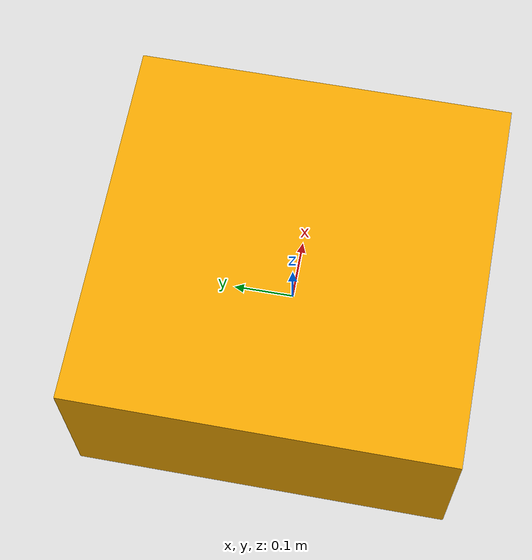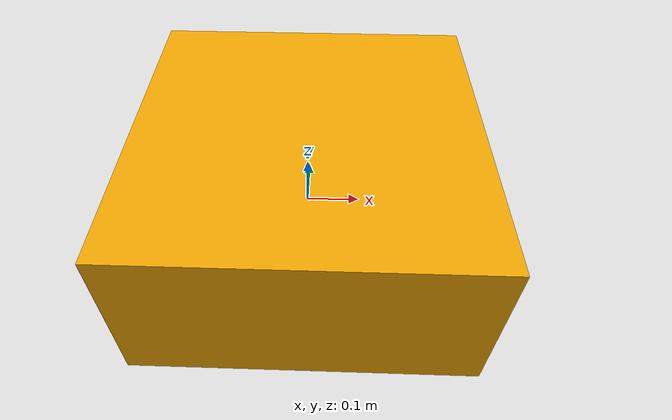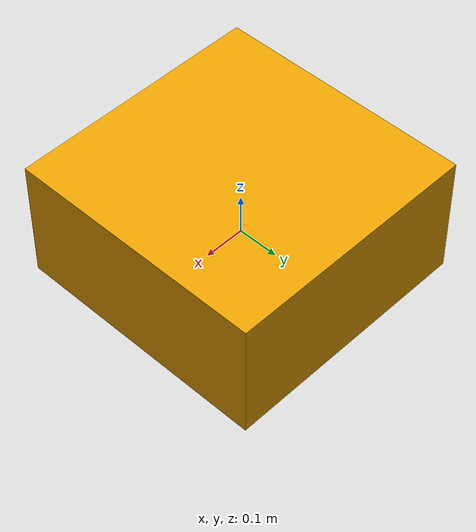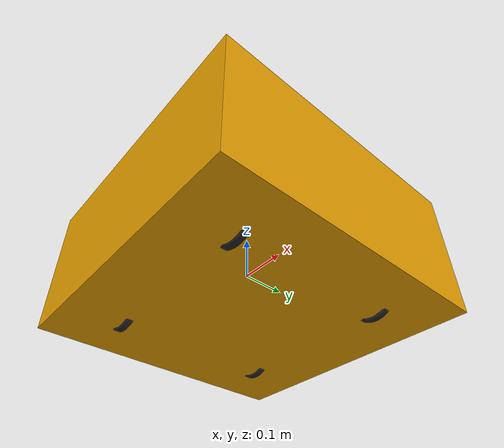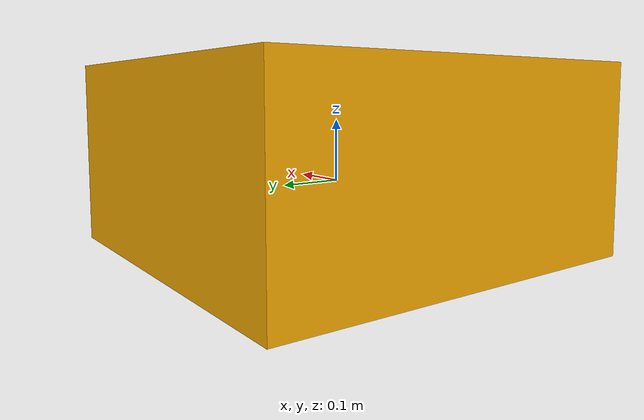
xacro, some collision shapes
<?xml version="1.0"?>
<robot xmlns:xacro="http://www.ros.org/wiki/xacro" name="sentry">

    <xacro:arg name="load_chassis" default="true"/>
    <xacro:arg name="load_gimbal" default="false"/>
    <xacro:arg name="load_shooter" default="false"/>
    <xacro:arg name="camera_link" default="camera_link"/>
    <xacro:arg name="back_camera_link" default="back_camera_link"/>
    <xacro:arg name="camera_optical_frame" default="camera_optical_frame"/>
    <xacro:arg name="back_camera_optical_frame" default="back_camera_optical_frame"/>
    <xacro:arg name="use_simulation" default="false"/>
    <xacro:arg name="roller_type" default="realistic"/>

    <xacro:if value="$(arg load_chassis)">
        <xacro:include filename="$(find rm2_description)/urdf/sentry/chassis.urdf.xacro"/>
        <xacro:chassis roller_type="$(arg roller_type)"/>

        <xacro:if value="$(arg load_gimbal)">
            <xacro:include filename="$(find rm2_description)/urdf/sentry/gimbal.urdf.xacro"/>
            <xacro:include filename="$(find rm2_description)/urdf/sentry/gimbal.transmission.urdf.xacro"/>

            <xacro:include filename="$(find rm2_description)/urdf/common/imu.urdf.xacro"/>
            <xacro:include filename="$(find rm2_description)/urdf/common/camera.urdf.xacro"/>
            <xacro:include filename="$(find rm2_description)/urdf/common/livox_mid360.urdf.xacro"/>
            <xacro:include filename="$(find rm2_description)/urdf/common/lidar2d.urdf.xacro"/>
            <xacro:camera_sensor xyz="0.019622 0 0.0681" rpy="0 0 0" frame_id="$(arg camera_link)"
                                 camera_type="hk_camera"
                                 parent="pitch"
                                 camera_sim="$(arg use_simulation)"/>
            <xacro:camera_optical_frame xyz="0.019622 0 0.0681"
                                        rpy="-1.53606 0 -1.5697212"
                                        frame_id="$(arg camera_optical_frame)"
                                        parent="pitch"
                                        camera_sim="false"/>
            <xacro:camera_sensor xyz="-0.057452 0.067 0.035482" rpy="0 0 0" frame_id="$(arg back_camera_link)"
                                 camera_type="galaxy_camera" parent="yaw"
                                 camera_sim="$(arg use_simulation)"/>
            <!--                                        rpy="-1.6307963 0 1.5707963"-->
            <xacro:camera_optical_frame xyz="-0.057452 0.067 0.035482"
                                        rpy="${pi/2} 0 -${pi/2}"
                                        frame_id="$(arg back_camera_optical_frame)"
                                        parent="yaw"
                                        camera_sim="false"/>
            <xacro:IMU connected_to="pitch" imu_name="gimbal_imu"
                       xyz="-0.01181 0 0.0426"
                       rpy="0.023 -0.01 -${pi/2}"/>
            <!--            0.05 0 -${pi/2}"   0.05 0.01 -1.65-->
            <xacro:livox_mid360 connected_to="yaw" simulation="$(arg use_simulation)" lidar_name="livox_frame"
                                xyz="-0.046952 0.12769 0.086387" rpy="0.789 0.009 -3.1415926"/>
            <xacro:lidar2d connected_to="yaw" simulation="$(arg use_simulation)" lidar_name="laser"
                           xyz="-0.047347 -0.094 0.03285" rpy="0.0 0.0 0.0"/>
            <xacro:if value="$(arg load_shooter)">
                <xacro:include filename="$(find rm2_description)/urdf/sentry/shooter.urdf.xacro"/>
                <xacro:include filename="$(find rm2_description)/urdf/sentry/shooter.transmission.urdf.xacro"/>
            </xacro:if>
        </xacro:if>
    </xacro:if>

    <ros2_control name="RmEcatHardwareInterface" type="system">
        <hardware>
            <plugin>rm2_ecat_ros/RmEcatHardwareInterface</plugin>
        </hardware>

        <joint name="left_front_wheel_joint">
            <command_interface name="effort"/>
            <state_interface name="position"/>
            <state_interface name="velocity"/>
            <state_interface name="effort"/>
        </joint>

        <joint name="right_front_wheel_joint">
            <command_interface name="effort"/>
            <state_interface name="position"/>
            <state_interface name="velocity"/>
            <state_interface name="effort"/>
        </joint>

        <joint name="left_back_wheel_joint">
            <command_interface name="effort"/>
            <state_interface name="position"/>
            <state_interface name="velocity"/>
            <state_interface name="effort"/>
        </joint>

        <joint name="right_back_wheel_joint">
            <command_interface name="effort"/>
            <state_interface name="position"/>
            <state_interface name="velocity"/>
            <state_interface name="effort"/>
        </joint>

        <joint name="left_front_pivot_joint">
            <command_interface name="effort"/>
            <state_interface name="position"/>
            <state_interface name="velocity"/>
            <state_interface name="effort"/>
        </joint>

        <joint name="right_front_pivot_joint">
            <command_interface name="effort"/>
            <state_interface name="position"/>
            <state_interface name="velocity"/>
            <state_interface name="effort"/>
        </joint>

        <joint name="left_back_pivot_joint">
            <command_interface name="effort"/>
            <state_interface name="position"/>
            <state_interface name="velocity"/>
            <state_interface name="effort"/>
        </joint>

        <joint name="right_back_pivot_joint">
            <command_interface name="effort"/>
            <state_interface name="position"/>
            <state_interface name="velocity"/>
            <state_interface name="effort"/>
        </joint>

        <!--Other joint wait to added-->
    </ros2_control>

</robot>

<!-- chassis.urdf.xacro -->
<robot xmlns:xacro="http://www.ros.org/wiki/xacro">

    <xacro:include filename="$(find rm2_description)/urdf/common/swerve_drive.urdf.xacro"/>
    <!-- https://upload.wikimedia.org/wikipedia/commons/5/52/Wheelbase_and_Track.png -->
    <xacro:property name="wheel_track" value="0.362"/>
    <xacro:property name="wheel_base" value="0.362"/>
    <xacro:property name="wheel_offset_z" value="0.013"/>
    <xacro:macro name="chassis" params="roller_type">

        <link name="base_link">
            <inertial>
                <mass value="9.16"/>
                <origin xyz="0.00322  0.014441  0.043408"/>
                <inertia ixx="2.298e-1" ixy="7.142e-4" ixz="1.441e-2" iyy="2.387e-1"
                         iyz="1.056e-2" izz="3.928e-1"/>
            </inertial>
            <visual>
                <origin xyz="0 0 0" rpy="0 0 0"/>
                <geometry>
                    <mesh filename="package://rm2_description/meshes/sentry/base.stl" scale="1 1 1"/>
                </geometry>
            </visual>
            <collision>
                <origin xyz="0 0 0.04" rpy="0 0 0"/>
                <geometry>
                    <box size="0.615 0.62 0.3"/>
                </geometry>
            </collision>
        </link>

        <xacro:swerve_drive prefix="left_front" connected_to="base_link"
                            x_offset="${wheel_track/2}" y_offset="${wheel_base/2}"
                            z_offset="${wheel_offset_z}"/>
        <xacro:swerve_drive prefix="right_front" connected_to="base_link"
                            x_offset="${wheel_track/2}" y_offset="${-wheel_base/2}"
                            z_offset="${wheel_offset_z}"/>
        <xacro:swerve_drive prefix="left_back" connected_to="base_link"
                            x_offset="${-wheel_track/2}" y_offset="${wheel_base/2}"
                            z_offset="${wheel_offset_z}"/>
        <xacro:swerve_drive prefix="right_back" connected_to="base_link"
                            x_offset="${-wheel_track/2}" y_offset="${-wheel_base/2}"
                            z_offset="${wheel_offset_z}"/>

        <xacro:swerve_transmission prefix="left_front" wheel_reduction="13" pivot_offset="-0.771687"/>
        <xacro:swerve_transmission prefix="right_front" wheel_reduction="13" pivot_offset="2.908015"/>
        <xacro:swerve_transmission prefix="left_back" wheel_reduction="13" pivot_offset="2.889605"/>
        <xacro:swerve_transmission prefix="right_back" wheel_reduction="13" pivot_offset="-0.750976"/>

    </xacro:macro>

</robot>

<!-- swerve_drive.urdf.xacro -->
<robot xmlns:xacro="http://www.ros.org/wiki/xacro">

    <xacro:macro name="swerve_drive"
                 params="prefix x_offset y_offset z_offset  connected_to">

        <link name="${prefix}_pivot">
            <visual>
                <origin xyz="0 0 0" rpy="0 0 0"/>
                <geometry>
                    <mesh filename="package://rm2_description/meshes/common/swerve_pivot.stl"
                          scale="1 1 1"/>
                </geometry>
            </visual>
            <inertial>
                <mass value="0.114131"/>
                <origin xyz="-0.00005 0.017079 -0.041536" rpy="0 0 0"/>
                <inertia ixx="1.335e-4" ixy="26.001e-9" ixz="65.031e-9" iyy="1.372e-4" iyz="20051.742e-9"
                         izz="66866.081e-9"/>
            </inertial>
        </link>

        <joint name="${prefix}_pivot_joint" type="revolute">
            <axis xyz="0 0 1"/>
            <origin xyz="${x_offset} ${y_offset} ${z_offset}" rpy="0 0 0"/>
            <parent link="${connected_to}"/>
            <child link="${prefix}_pivot"/>
            <dynamics damping="0.0" friction="0.1"/>
            <limit effort="1.2" velocity="50" lower="-1e10" upper="1e10"/>
        </joint>

        <link name="${prefix}_wheel">
            <visual>
                <origin xyz="0 0 0" rpy="0 0 0"/>
                <geometry>
                    <mesh filename="package://rm2_description/meshes/common/swerve_wheel.stl"
                          scale="1 1 1"/>
                </geometry>
            </visual>
            <inertial>
                <mass value="0.267401"/>
                <origin xyz="-0.000004 0.000125 0.000001" rpy="0 0 0"/>
                <inertia ixx="3.585e-4" ixy="0" ixz="13.459e-9" iyy="6.846e-4" iyz="0"
                         izz="3.584e-4"/>
            </inertial>
            <collision>
                <origin xyz="0 0 0" rpy="${pi/2.} 0 0"/>
                <geometry>
                    <cylinder length="0.02" radius="0.055"/>
                </geometry>
            </collision>
        </link>

        <joint name="${prefix}_wheel_joint" type="revolute">
            <axis xyz="0 1 0"/>
            <origin xyz="0 0 -0.07735" rpy="0 0 0"/>
            <parent link="${prefix}_pivot"/>
            <child link="${prefix}_wheel"/>
            <limit effort="3" velocity="76" lower="-1e10" upper="1e10"/>
            <dynamics damping="0.0" friction="0.05"/>
        </joint>

        <gazebo reference="${prefix}_wheel">
            <mu1 value="1.0"/>
            <mu2 value="1.0"/>
            <kp value="1000000.0"/>
            <kd value="100.0"/>
            <material>Gazebo/Black</material>
        </gazebo>
    </xacro:macro>

    <xacro:macro name="swerve_transmission" params="prefix wheel_reduction  pivot_offset">

        <transmission name="${prefix}_pivot_trans">
            <type>transmission_interface/SimpleTransmission</type>
            <plugin>transmission_interface/SimpleTransmission</plugin>
            <joint name="${prefix}_pivot_joint" role="actuated">
                <mechanical_reduction>-1</mechanical_reduction>
                <offset>${pivot_offset}</offset>
            </joint>
            <actuator name="${prefix}_pivot_motor" role="actuated">
                <mechanical_reduction>-1</mechanical_reduction>
            </actuator>
        </transmission>

        <transmission name="${prefix}_wheel_trans">
            <type>transmission_interface/SimpleTransmission</type>
            <plugin>transmission_interface/SimpleTransmission</plugin>
            <joint name="${prefix}_wheel_joint" role="actuated">
                <mechanical_reduction>${wheel_reduction}</mechanical_reduction>
                <offset>0.0</offset>
            </joint>
            <actuator name="${prefix}_wheel_motor" role="actuated">
                <mechanical_reduction>${wheel_reduction}</mechanical_reduction>
            </actuator>
        </transmission>
    </xacro:macro>

</robot>
